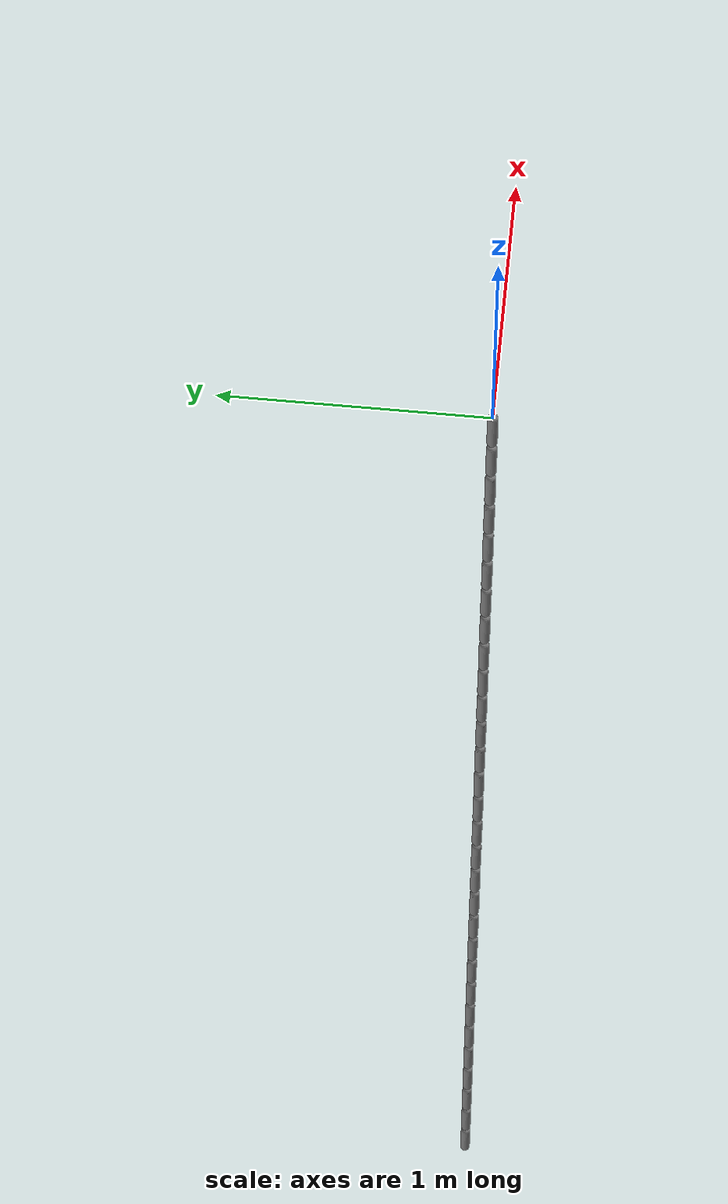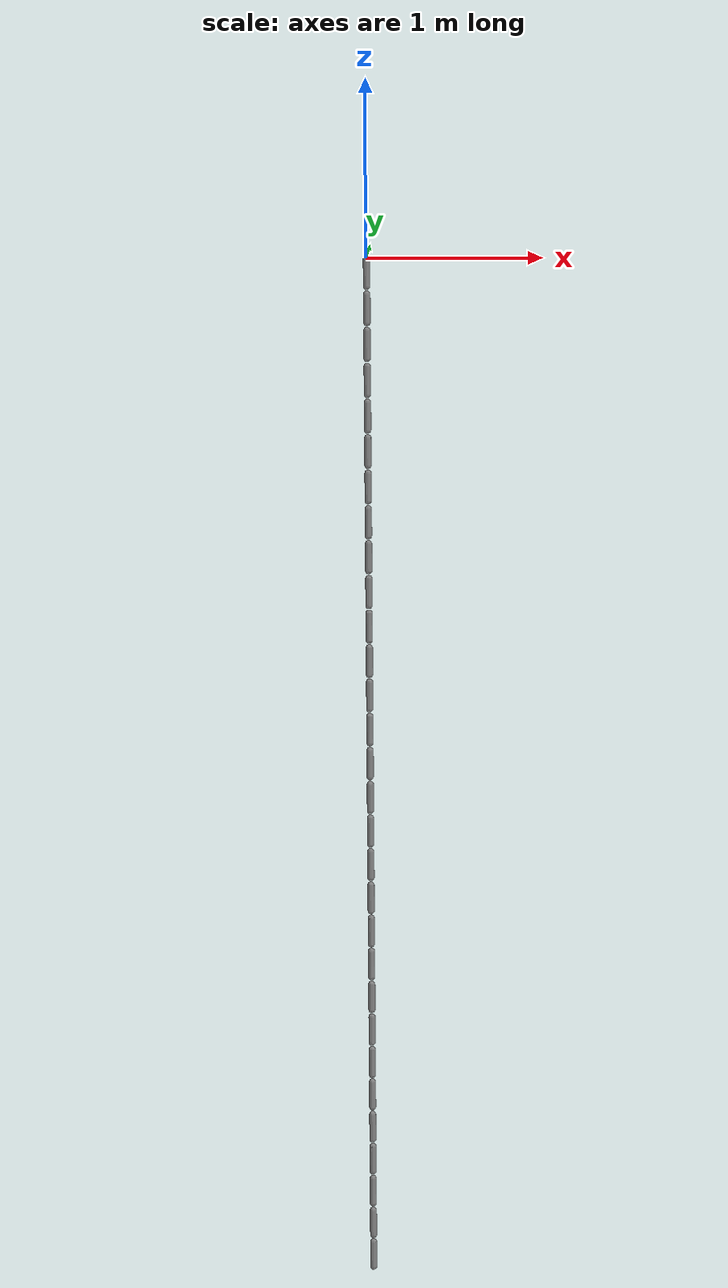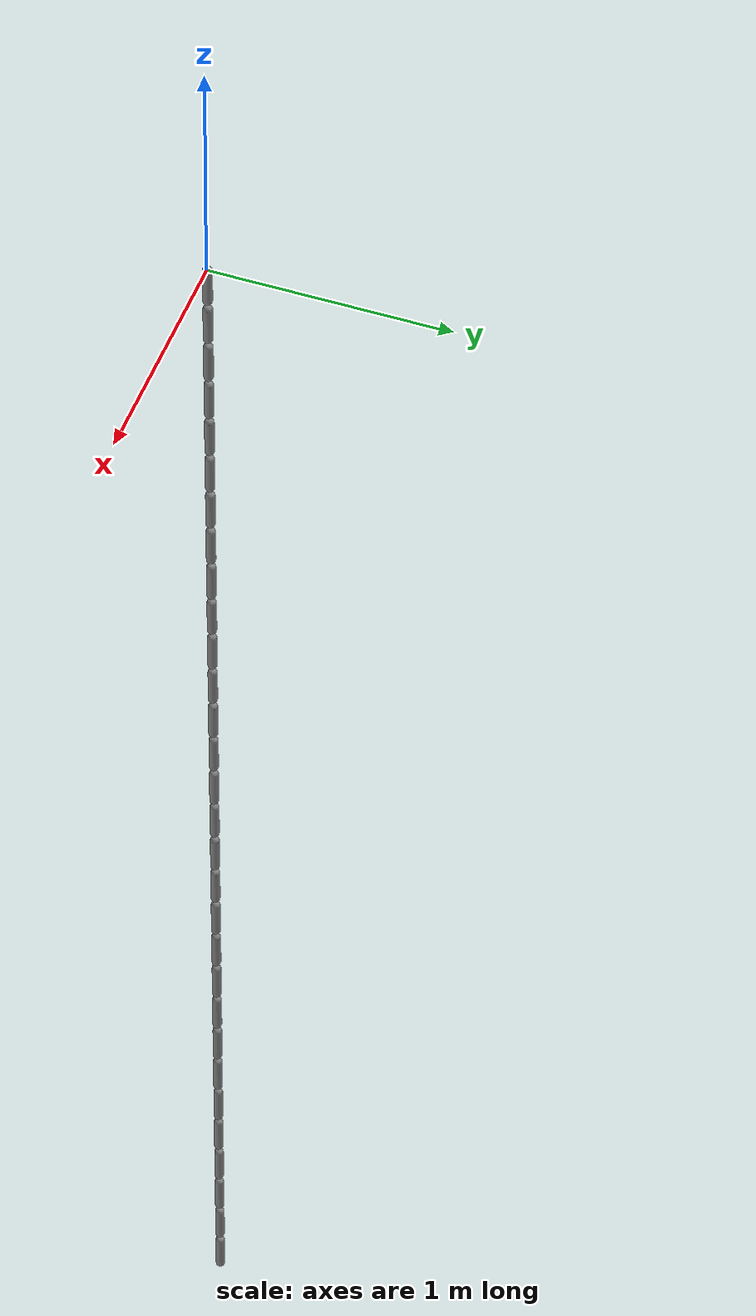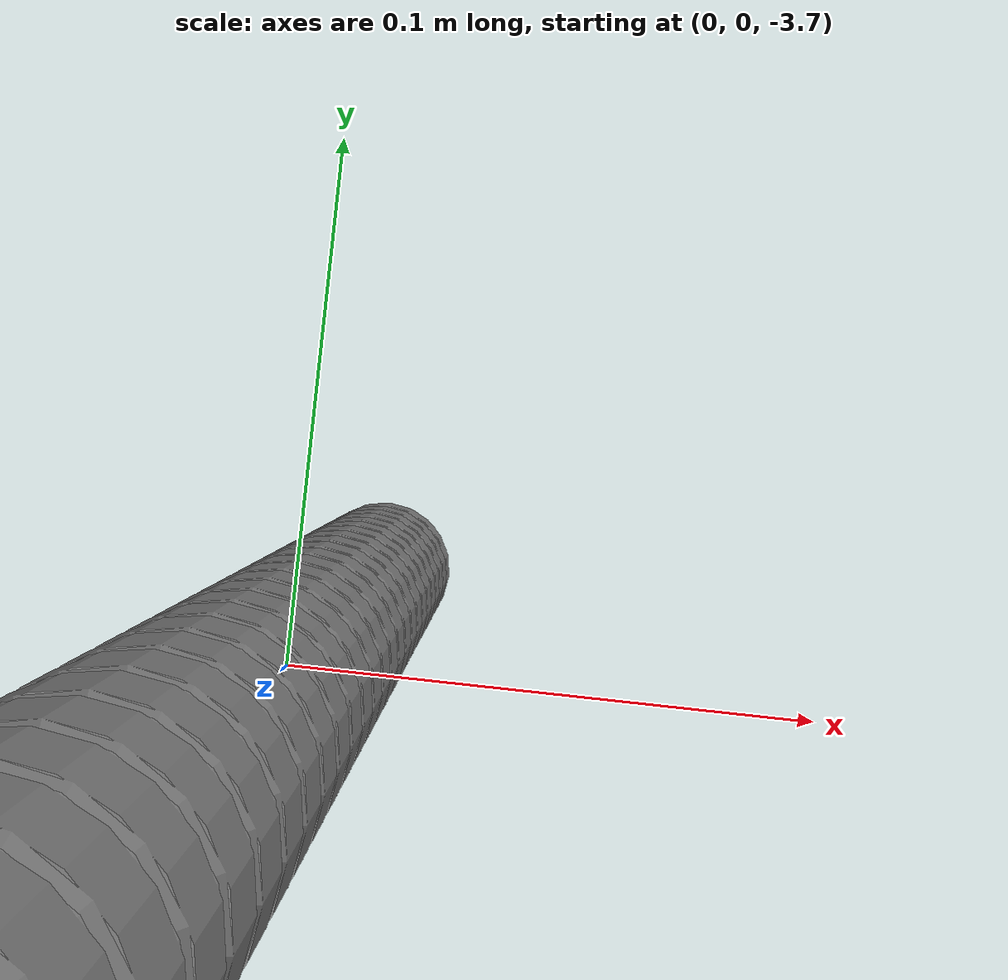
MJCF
<mujoco model="rope">
  <statistic extent="2" center="0 0 1"/>

  <default>
    <motor ctrlrange="-1 1" ctrllimited="true"/>
    <default class="body">
      <geom type="capsule" condim="1" friction="1.0 0.05 0.05" solimp=".9 .99 .003" solref=".015 1"/>
      <joint type="hinge" damping="0.1" stiffness="5" armature=".007" limited="false" solimplimit="0 .99 .01"/>
      <site size=".04" group="3"/>
      <default class="force-torque">
        <site type="box" size=".01 .01 .02" rgba="1 0 0 1" />
      </default>
      <default class="touch">
        <site type="capsule" rgba="0 0 1 .3"/>
      </default>
    </default>
  </default>

  <contact>
    <exclude body1="bar0" body2="bar1"/>
    <exclude body1="bar1" body2="bar2"/>
    <exclude body1="bar2" body2="bar3"/>
    <exclude body1="bar3" body2="bar4"/>
    <exclude body1="bar4" body2="bar5"/>
    <exclude body1="bar5" body2="bar6"/>
    <exclude body1="bar6" body2="bar7"/>
    <exclude body1="bar7" body2="bar8"/>
    <exclude body1="bar8" body2="bar9"/>
    <exclude body1="bar9" body2="bar10"/>
    <exclude body1="bar10" body2="bar11"/>
    <exclude body1="bar11" body2="bar12"/>
    <exclude body1="bar12" body2="bar13"/>
    <exclude body1="bar13" body2="bar14"/>
    <exclude body1="bar14" body2="bar15"/>
    <exclude body1="bar15" body2="bar16"/>
    <exclude body1="bar16" body2="bar17"/>
    <exclude body1="bar17" body2="bar18"/>
    <exclude body1="bar18" body2="bar19"/>
    <exclude body1="bar19" body2="bar20"/>
    <exclude body1="bar20" body2="bar21"/>
    <exclude body1="bar21" body2="bar22"/>
    <exclude body1="bar22" body2="bar23"/>
    <exclude body1="bar23" body2="bar24"/>
    <exclude body1="bar24" body2="bar25"/>
    <exclude body1="bar25" body2="bar26"/>
    <exclude body1="bar26" body2="bar27"/>
    <exclude body1="bar27" body2="bar28"/>
    <exclude body1="bar28" body2="bar29"/>
  </contact>

  <worldbody>

    <body name="bar0" pos="0 0 0" childclass="body">
      <freejoint name="root"/>
      <site name="root" class="force-torque"/>
      <geom name="bar0_body" fromto="0 0 0 0 0 -0.16" size="0.02" density="10000"/>
      <site name="bar0_body" class="touch" pos="0 0 -0.1" size="0.02 0.16" zaxis="0 1 0"/>

      <body name="bar1" pos="0 0 -0.205">
        <joint name="bar1_x" axis="1 0 0" range="-180 180" stiffness="50" damping="5" armature="0.1"/>
        <joint name="bar1_y" axis="0 1 0" range="-180 180" stiffness="50" damping="5" armature="0.1"/>
        <geom name="bar1_body" fromto="0 0 0 0 0 -0.16" size="0.02" density="10000"/>
        <site name="bar1_body" class="touch" pos="0 0 -0.1" size="0.02 0.16" zaxis="0 1 0"/>

        <body name="bar2" pos="0 0 -0.205">
          <joint name="bar2_x" axis="1 0 0" range="-180 180" stiffness="50" damping="5" armature="0.1"/>
          <joint name="bar2_y" axis="0 1 0" range="-180 180" stiffness="50" damping="5" armature="0.1"/>
          <geom name="bar2_body" fromto="0 0 0 0 0 -0.16" size="0.02" density="10000"/>
          <site name="bar2_body" class="touch" pos="0 0 -0.1" size="0.02 0.16" zaxis="0 1 0"/>

          <body name="bar3" pos="0 0 -0.205">
            <joint name="bar3_x" axis="1 0 0" range="-180 180" stiffness="50" damping="5" armature="0.1"/>
            <joint name="bar3_y" axis="0 1 0" range="-180 180" stiffness="50" damping="5" armature="0.1"/>
            <geom name="bar3_body" fromto="0 0 0 0 0 -0.16" size="0.02" density="10000"/>
            <site name="bar3_body" class="touch" pos="0 0 -0.1" size="0.02 0.16" zaxis="0 1 0"/>

            <body name="bar4" pos="0 0 -0.205">
              <joint name="bar4_x" axis="1 0 0" range="-180 180" stiffness="50" damping="5" armature="0.1"/>
              <joint name="bar4_y" axis="0 1 0" range="-180 180" stiffness="50" damping="5" armature="0.1"/>
              <geom name="bar4_body" fromto="0 0 0 0 0 -0.16" size="0.02" density="10000"/>
              <site name="bar4_body" class="touch" pos="0 0 -0.1" size="0.02 0.16" zaxis="0 1 0"/>

              <body name="bar5" pos="0 0 -0.205">
                <joint name="bar5_x" axis="1 0 0" range="-180 180" stiffness="50" damping="5" armature="0.1"/>
                <joint name="bar5_y" axis="0 1 0" range="-180 180" stiffness="50" damping="5" armature="0.1"/>
                <geom name="bar5_body" fromto="0 0 0 0 0 -0.16" size="0.02" density="10000"/>
                <site name="bar5_body" class="touch" pos="0 0 -0.1" size="0.02 0.16" zaxis="0 1 0"/>

                <body name="bar6" pos="0 0 -0.205">
                  <joint name="bar6_x" axis="1 0 0" range="-180 180" stiffness="50" damping="5" armature="0.1"/>
                  <joint name="bar6_y" axis="0 1 0" range="-180 180" stiffness="50" damping="5" armature="0.1"/>
                  <geom name="bar6_body" fromto="0 0 0 0 0 -0.16" size="0.02" density="10000"/>
                  <site name="bar6_body" class="touch" pos="0 0 -0.1" size="0.02 0.16" zaxis="0 1 0"/>

                  <body name="bar7" pos="0 0 -0.205">
                    <joint name="bar7_x" axis="1 0 0" range="-180 180" stiffness="50" damping="5" armature="0.1"/>
                    <joint name="bar7_y" axis="0 1 0" range="-180 180" stiffness="50" damping="5" armature="0.1"/>
                    <geom name="bar7_body" fromto="0 0 0 0 0 -0.16" size="0.02" density="10000"/>
                    <site name="bar7_body" class="touch" pos="0 0 -0.1" size="0.02 0.16" zaxis="0 1 0"/>

                    <body name="bar8" pos="0 0 -0.205">
                      <joint name="bar8_x" axis="1 0 0" range="-180 180" stiffness="50" damping="5" armature="0.1"/>
                      <joint name="bar8_y" axis="0 1 0" range="-180 180" stiffness="50" damping="5" armature="0.1"/>
                      <geom name="bar8_body" fromto="0 0 0 0 0 -0.16" size="0.02" density="10000"/>
                      <site name="bar8_body" class="touch" pos="0 0 -0.1" size="0.02 0.16" zaxis="0 1 0"/>

                      <body name="bar9" pos="0 0 -0.205">
                        <joint name="bar9_x" axis="1 0 0" range="-180 180" stiffness="50" damping="5" armature="0.1"/>
                        <joint name="bar9_y" axis="0 1 0" range="-180 180" stiffness="50" damping="5" armature="0.1"/>
                        <geom name="bar9_body" fromto="0 0 0 0 0 -0.16" size="0.02" density="10000"/>
                        <site name="bar9_body" class="touch" pos="0 0 -0.1" size="0.02 0.16" zaxis="0 1 0"/>

                        <body name="bar10" pos="0 0 -0.205">
                          <joint name="bar10_x" axis="1 0 0" range="-180 180" stiffness="50" damping="5" armature="0.1"/>
                          <joint name="bar10_y" axis="0 1 0" range="-180 180" stiffness="50" damping="5" armature="0.1"/>
                          <geom name="bar10_body" fromto="0 0 0 0 0 -0.16" size="0.02" density="10000"/>
                          <site name="bar10_body" class="touch" pos="0 0 -0.1" size="0.02 0.16" zaxis="0 1 0"/>

                          <body name="bar11" pos="0 0 -0.205">
                            <joint name="bar11_x" axis="1 0 0" range="-180 180" stiffness="50" damping="5" armature="0.1"/>
                            <joint name="bar11_y" axis="0 1 0" range="-180 180" stiffness="50" damping="5" armature="0.1"/>
                            <geom name="bar11_body" fromto="0 0 0 0 0 -0.16" size="0.02" density="10000"/>
                            <site name="bar11_body" class="touch" pos="0 0 -0.1" size="0.02 0.16" zaxis="0 1 0"/>

                            <body name="bar12" pos="0 0 -0.205">
                              <joint name="bar12_x" axis="1 0 0" range="-180 180" stiffness="50" damping="5" armature="0.1"/>
                              <joint name="bar12_y" axis="0 1 0" range="-180 180" stiffness="50" damping="5" armature="0.1"/>
                              <geom name="bar12_body" fromto="0 0 0 0 0 -0.16" size="0.02" density="10000"/>
                              <site name="bar12_body" class="touch" pos="0 0 -0.1" size="0.02 0.16" zaxis="0 1 0"/>

                              <body name="bar13" pos="0 0 -0.205">
                                <joint name="bar13_x" axis="1 0 0" range="-180 180" stiffness="50" damping="5" armature="0.1"/>
                                <joint name="bar13_y" axis="0 1 0" range="-180 180" stiffness="50" damping="5" armature="0.1"/>
                                <geom name="bar13_body" fromto="0 0 0 0 0 -0.16" size="0.02" density="10000"/>
                                <site name="bar13_body" class="touch" pos="0 0 -0.1" size="0.02 0.16" zaxis="0 1 0"/>

                                <body name="bar14" pos="0 0 -0.205">
                                  <joint name="bar14_x" axis="1 0 0" range="-180 180" stiffness="50" damping="5" armature="0.1"/>
                                  <joint name="bar14_y" axis="0 1 0" range="-180 180" stiffness="50" damping="5" armature="0.1"/>
                                  <geom name="bar14_body" fromto="0 0 0 0 0 -0.16" size="0.02" density="10000"/>
                                  <site name="bar14_body" class="touch" pos="0 0 -0.1" size="0.02 0.16" zaxis="0 1 0"/>

                                  <body name="bar15" pos="0 0 -0.205">
                                    <joint name="bar15_x" axis="1 0 0" range="-180 180" stiffness="50" damping="5" armature="0.1"/>
                                    <joint name="bar15_y" axis="0 1 0" range="-180 180" stiffness="50" damping="5" armature="0.1"/>
                                    <geom name="bar15_body" fromto="0 0 0 0 0 -0.16" size="0.02" density="10000"/>
                                    <site name="bar15_body" class="touch" pos="0 0 -0.1" size="0.02 0.16" zaxis="0 1 0"/>

                                    <body name="bar16" pos="0 0 -0.205">
                                      <joint name="bar16_x" axis="1 0 0" range="-180 180" stiffness="50" damping="5" armature="0.1"/>
                                      <joint name="bar16_y" axis="0 1 0" range="-180 180" stiffness="50" damping="5" armature="0.1"/>
                                      <geom name="bar16_body" fromto="0 0 0 0 0 -0.16" size="0.02" density="10000"/>
                                      <site name="bar16_body" class="touch" pos="0 0 -0.1" size="0.02 0.16" zaxis="0 1 0"/>

                                      <body name="bar17" pos="0 0 -0.205">
                                        <joint name="bar17_x" axis="1 0 0" range="-180 180" stiffness="50" damping="5" armature="0.1"/>
                                        <joint name="bar17_y" axis="0 1 0" range="-180 180" stiffness="50" damping="5" armature="0.1"/>
                                        <geom name="bar17_body" fromto="0 0 0 0 0 -0.16" size="0.02" density="10000"/>
                                        <site name="bar17_body" class="touch" pos="0 0 -0.1" size="0.02 0.16" zaxis="0 1 0"/>

                                        <body name="bar18" pos="0 0 -0.205">
                                          <joint name="bar18_x" axis="1 0 0" range="-180 180" stiffness="50" damping="5" armature="0.1"/>
                                          <joint name="bar18_y" axis="0 1 0" range="-180 180" stiffness="50" damping="5" armature="0.1"/>
                                          <geom name="bar18_body" fromto="0 0 0 0 0 -0.16" size="0.02" density="10000"/>
                                          <site name="bar18_body" class="touch" pos="0 0 -0.1" size="0.02 0.16" zaxis="0 1 0"/>

                                          <body name="bar19" pos="0 0 -0.205">
                                            <joint name="bar19_x" axis="1 0 0" range="-180 180" stiffness="50" damping="5" armature="0.1"/>
                                            <joint name="bar19_y" axis="0 1 0" range="-180 180" stiffness="50" damping="5" armature="0.1"/>
                                            <geom name="bar19_body" fromto="0 0 0 0 0 -0.16" size="0.02" density="10000"/>
                                            <site name="bar19_body" class="touch" pos="0 0 -0.1" size="0.02 0.16" zaxis="0 1 0"/>

                                            <body name="bar20" pos="0 0 -0.205">
                                              <joint name="bar20_x" axis="1 0 0" range="-180 180" stiffness="50" damping="5" armature="0.1"/>
                                              <joint name="bar20_y" axis="0 1 0" range="-180 180" stiffness="50" damping="5" armature="0.1"/>
                                              <geom name="bar20_body" fromto="0 0 0 0 0 -0.16" size="0.02" density="10000"/>
                                              <site name="bar20_body" class="touch" pos="0 0 -0.1" size="0.02 0.16" zaxis="0 1 0"/>

                                              <body name="bar21" pos="0 0 -0.205">
                                                <joint name="bar21_x" axis="1 0 0" range="-180 180" stiffness="50" damping="5" armature="0.1"/>
                                                <joint name="bar21_y" axis="0 1 0" range="-180 180" stiffness="50" damping="5" armature="0.1"/>
                                                <geom name="bar21_body" fromto="0 0 0 0 0 -0.16" size="0.02" density="10000"/>
                                                <site name="bar21_body" class="touch" pos="0 0 -0.1" size="0.02 0.16" zaxis="0 1 0"/>

                                                <body name="bar22" pos="0 0 -0.205">
                                                  <joint name="bar22_x" axis="1 0 0" range="-180 180" stiffness="50" damping="5" armature="0.1"/>
                                                  <joint name="bar22_y" axis="0 1 0" range="-180 180" stiffness="50" damping="5" armature="0.1"/>
                                                  <geom name="bar22_body" fromto="0 0 0 0 0 -0.16" size="0.02" density="10000"/>
                                                  <site name="bar22_body" class="touch" pos="0 0 -0.1" size="0.02 0.16" zaxis="0 1 0"/>

                                                  <body name="bar23" pos="0 0 -0.205">
                                                    <joint name="bar23_x" axis="1 0 0" range="-180 180" stiffness="50" damping="5" armature="0.1"/>
                                                    <joint name="bar23_y" axis="0 1 0" range="-180 180" stiffness="50" damping="5" armature="0.1"/>
                                                    <geom name="bar23_body" fromto="0 0 0 0 0 -0.16" size="0.02" density="10000"/>
                                                    <site name="bar23_body" class="touch" pos="0 0 -0.1" size="0.02 0.16" zaxis="0 1 0"/>

                                                    <body name="bar24" pos="0 0 -0.205">
                                                      <joint name="bar24_x" axis="1 0 0" range="-180 180" stiffness="50" damping="5" armature="0.1"/>
                                                      <joint name="bar24_y" axis="0 1 0" range="-180 180" stiffness="50" damping="5" armature="0.1"/>
                                                      <geom name="bar24_body" fromto="0 0 0 0 0 -0.16" size="0.02" density="10000"/>
                                                      <site name="bar24_body" class="touch" pos="0 0 -0.1" size="0.02 0.16" zaxis="0 1 0"/>

                                                      <body name="bar25" pos="0 0 -0.205">
                                                        <joint name="bar25_x" axis="1 0 0" range="-180 180" stiffness="50" damping="5" armature="0.1"/>
                                                        <joint name="bar25_y" axis="0 1 0" range="-180 180" stiffness="50" damping="5" armature="0.1"/>
                                                        <geom name="bar25_body" fromto="0 0 0 0 0 -0.16" size="0.02" density="10000"/>
                                                        <site name="bar25_body" class="touch" pos="0 0 -0.1" size="0.02 0.16" zaxis="0 1 0"/>

                                                        <body name="bar26" pos="0 0 -0.205">
                                                          <joint name="bar26_x" axis="1 0 0" range="-180 180" stiffness="50" damping="5" armature="0.1"/>
                                                          <joint name="bar26_y" axis="0 1 0" range="-180 180" stiffness="50" damping="5" armature="0.1"/>
                                                          <geom name="bar26_body" fromto="0 0 0 0 0 -0.16" size="0.02" density="10000"/>
                                                          <site name="bar26_body" class="touch" pos="0 0 -0.1" size="0.02 0.16" zaxis="0 1 0"/>

                                                          <body name="bar27" pos="0 0 -0.205">
                                                            <joint name="bar27_x" axis="1 0 0" range="-180 180" stiffness="50" damping="5" armature="0.1"/>
                                                            <joint name="bar27_y" axis="0 1 0" range="-180 180" stiffness="50" damping="5" armature="0.1"/>
                                                            <geom name="bar27_body" fromto="0 0 0 0 0 -0.16" size="0.02" density="10000"/>
                                                            <site name="bar27_body" class="touch" pos="0 0 -0.1" size="0.02 0.16" zaxis="0 1 0"/>

                                                            <body name="bar28" pos="0 0 -0.205">
                                                              <joint name="bar28_x" axis="1 0 0" range="-180 180" stiffness="50" damping="5" armature="0.1"/>
                                                              <joint name="bar28_y" axis="0 1 0" range="-180 180" stiffness="50" damping="5" armature="0.1"/>
                                                              <geom name="bar28_body" fromto="0 0 0 0 0 -0.16" size="0.02" density="10000"/>
                                                              <site name="bar28_body" class="touch" pos="0 0 -0.1" size="0.02 0.16" zaxis="0 1 0"/>

                                                              <body name="bar29" pos="0 0 -0.205">
                                                                <joint name="bar29_x" axis="1 0 0" range="-180 180" stiffness="50" damping="5" armature="0.1"/>
                                                                <joint name="bar29_y" axis="0 1 0" range="-180 180" stiffness="50" damping="5" armature="0.1"/>
                                                                <geom name="bar29_body" fromto="0 0 0 0 0 -0.16" size="0.02" density="10000"/>
                                                                <site name="bar29_body" class="touch" pos="0 0 -0.1" size="0.02 0.16" zaxis="0 1 0"/>

                                                              </body>
                                                            </body>
                                                          </body>
                                                        </body>
                                                      </body>
                                                    </body>
                                                  </body>
                                                </body>
                                              </body>
                                            </body>
                                          </body>
                                        </body>
                                      </body>
                                    </body>
                                  </body>
                                </body>
                              </body>
                            </body>
                          </body>
                        </body>
                      </body>
                    </body>
                  </body>
                </body>
              </body>
            </body>
          </body>
        </body>
      </body>
    </body>

  </worldbody>

  <actuator>
    <motor name='bar1_x'       gear='1' joint='bar1_x'/>
    <motor name='bar1_y'       gear='1' joint='bar1_y'/>
    <motor name='bar2_x'       gear='1' joint='bar2_x'/>
    <motor name='bar2_y'       gear='1' joint='bar2_y'/>
    <motor name='bar3_x'       gear='1' joint='bar3_x'/>
    <motor name='bar3_y'       gear='1' joint='bar3_y'/>
    <motor name='bar4_x'       gear='1' joint='bar4_x'/>
    <motor name='bar4_y'       gear='1' joint='bar4_y'/>
    <motor name='bar5_x'       gear='1' joint='bar5_x'/>
    <motor name='bar5_y'       gear='1' joint='bar5_y'/>
    <motor name='bar6_x'       gear='1' joint='bar6_x'/>
    <motor name='bar6_y'       gear='1' joint='bar6_y'/>
    <motor name='bar7_x'       gear='1' joint='bar7_x'/>
    <motor name='bar7_y'       gear='1' joint='bar7_y'/>
    <motor name='bar8_x'       gear='1' joint='bar8_x'/>
    <motor name='bar8_y'       gear='1' joint='bar8_y'/>
    <motor name='bar9_x'       gear='1' joint='bar9_x'/>
    <motor name='bar9_y'       gear='1' joint='bar9_y'/>
    <motor name='bar10_x'       gear='1' joint='bar10_x'/>
    <motor name='bar10_y'       gear='1' joint='bar10_y'/>
    <motor name='bar11_x'       gear='1' joint='bar11_x'/>
    <motor name='bar11_y'       gear='1' joint='bar11_y'/>
    <motor name='bar12_x'       gear='1' joint='bar12_x'/>
    <motor name='bar12_y'       gear='1' joint='bar12_y'/>
    <motor name='bar13_x'       gear='1' joint='bar13_x'/>
    <motor name='bar13_y'       gear='1' joint='bar13_y'/>
    <motor name='bar14_x'       gear='1' joint='bar14_x'/>
    <motor name='bar14_y'       gear='1' joint='bar14_y'/>
    <motor name='bar15_x'       gear='1' joint='bar15_x'/>
    <motor name='bar15_y'       gear='1' joint='bar15_y'/>
    <motor name='bar16_x'       gear='1' joint='bar16_x'/>
    <motor name='bar16_y'       gear='1' joint='bar16_y'/>
    <motor name='bar17_x'       gear='1' joint='bar17_x'/>
    <motor name='bar17_y'       gear='1' joint='bar17_y'/>
    <motor name='bar18_x'       gear='1' joint='bar18_x'/>
    <motor name='bar18_y'       gear='1' joint='bar18_y'/>
    <motor name='bar19_x'       gear='1' joint='bar19_x'/>
    <motor name='bar19_y'       gear='1' joint='bar19_y'/>
    <motor name='bar20_x'       gear='1' joint='bar20_x'/>
    <motor name='bar20_y'       gear='1' joint='bar20_y'/>
    <motor name='bar21_x'       gear='1' joint='bar21_x'/>
    <motor name='bar21_y'       gear='1' joint='bar21_y'/>
    <motor name='bar22_x'       gear='1' joint='bar22_x'/>
    <motor name='bar22_y'       gear='1' joint='bar22_y'/>
    <motor name='bar23_x'       gear='1' joint='bar23_x'/>
    <motor name='bar23_y'       gear='1' joint='bar23_y'/>
    <motor name='bar24_x'       gear='1' joint='bar24_x'/>
    <motor name='bar24_y'       gear='1' joint='bar24_y'/>
    <motor name='bar25_x'       gear='1' joint='bar25_x'/>
    <motor name='bar25_y'       gear='1' joint='bar25_y'/>
    <motor name='bar26_x'       gear='1' joint='bar26_x'/>
    <motor name='bar26_y'       gear='1' joint='bar26_y'/>
    <motor name='bar27_x'       gear='1' joint='bar27_x'/>
    <motor name='bar27_y'       gear='1' joint='bar27_y'/>
    <motor name='bar28_x'       gear='1' joint='bar28_x'/>
    <motor name='bar28_y'       gear='1' joint='bar28_y'/>
    <motor name='bar29_x'       gear='1' joint='bar29_x'/>
    <motor name='bar29_y'       gear='1' joint='bar29_y'/>
  </actuator>

</mujoco>
